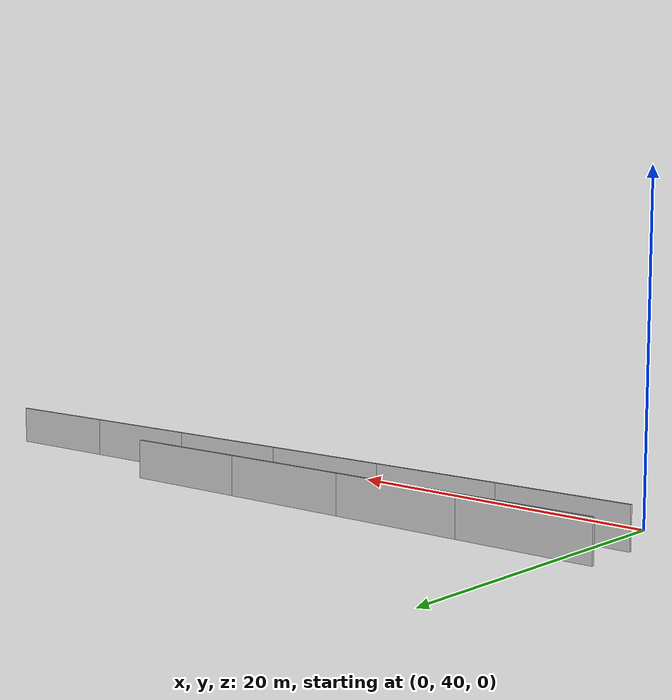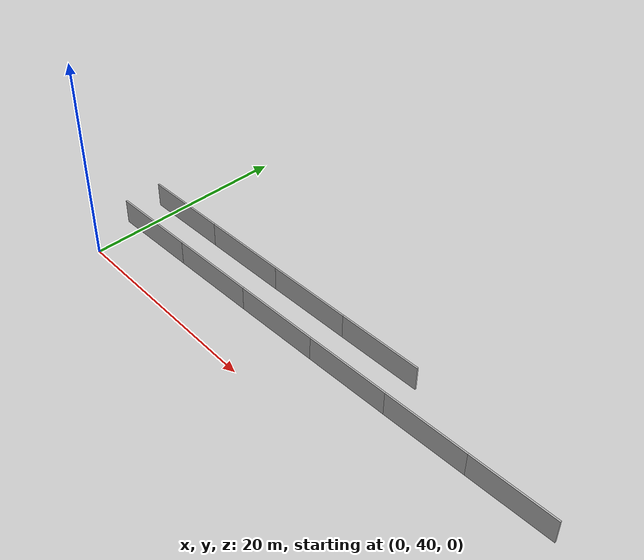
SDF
<?xml version="1.0" ?>
<sdf version="1.6">
  <model name="sps_4701">
    <pose frame="">0 0 0 0 -0 0</pose>
    <static>1</static>
    <self_collide>0</self_collide>
    <allow_auto_disable>0</allow_auto_disable>
    <link name="Wall8944">
      <kinematic>0</kinematic>
      <gravity>1</gravity>
      <self_collide>0</self_collide>
      <collision name="collision">
        <geometry>
          <box>
            <size>8.25148 0.15 2.5</size>
          </box>
        </geometry>
        <pose frame="">0 0 0 0 -0 0</pose>
      </collision>
      <visual name="visual">
        <geometry>
          <box>
            <size>8.25148 0.15 2.5</size>
          </box>
        </geometry>
        <pose frame="">0 0 0 0 -0 0</pose>
        <cast_shadows>1</cast_shadows>
        <transparency>0.0</transparency>
      </visual>
      <pose frame="">2.21145 48.5394 1.25 0 -0 0.0414788</pose>
    </link>
    <link name="Wall8945">
      <kinematic>0</kinematic>
      <gravity>1</gravity>
      <self_collide>0</self_collide>
      <collision name="collision">
        <geometry>
          <box>
            <size>8.25195 0.15 2.5</size>
          </box>
        </geometry>
        <pose frame="">0 0 0 0 -0 0</pose>
      </collision>
      <visual name="visual">
        <geometry>
          <box>
            <size>8.25195 0.15 2.5</size>
          </box>
        </geometry>
        <pose frame="">0 0 0 0 -0 0</pose>
        <cast_shadows>1</cast_shadows>
        <transparency>0.0</transparency>
      </visual>
      <pose frame="">10.4556 48.8913 1.25 0 -0 0.043838</pose>
    </link>
    <link name="Wall8946">
      <kinematic>0</kinematic>
      <gravity>1</gravity>
      <self_collide>0</self_collide>
      <collision name="collision">
        <geometry>
          <box>
            <size>8.25178 0.15 2.5</size>
          </box>
        </geometry>
        <pose frame="">0 0 0 0 -0 0</pose>
      </collision>
      <visual name="visual">
        <geometry>
          <box>
            <size>8.25178 0.15 2.5</size>
          </box>
        </geometry>
        <pose frame="">0 0 0 0 -0 0</pose>
        <cast_shadows>1</cast_shadows>
        <transparency>0.0</transparency>
      </visual>
      <pose frame="">18.6991 49.2626 1.25 0 -0 0.046186</pose>
    </link>
    <link name="Wall8947">
      <kinematic>0</kinematic>
      <gravity>1</gravity>
      <self_collide>0</self_collide>
      <collision name="collision">
        <geometry>
          <box>
            <size>8.25155 0.15 2.5</size>
          </box>
        </geometry>
        <pose frame="">0 0 0 0 -0 0</pose>
      </collision>
      <visual name="visual">
        <geometry>
          <box>
            <size>8.25155 0.15 2.5</size>
          </box>
        </geometry>
        <pose frame="">0 0 0 0 -0 0</pose>
        <cast_shadows>1</cast_shadows>
        <transparency>0.0</transparency>
      </visual>
      <pose frame="">26.9416 49.6534 1.25 0 -0 0.0485717</pose>
    </link>
    <link name="Wall9035">
      <kinematic>0</kinematic>
      <gravity>1</gravity>
      <self_collide>0</self_collide>
      <collision name="collision">
        <geometry>
          <box>
            <size>8.26149 0.15 2.5</size>
          </box>
        </geometry>
        <pose frame="">0 0 0 0 -0 0</pose>
      </collision>
      <visual name="visual">
        <geometry>
          <box>
            <size>8.26149 0.15 2.5</size>
          </box>
        </geometry>
        <pose frame="">0 0 0 0 -0 0</pose>
        <cast_shadows>1</cast_shadows>
        <transparency>0.0</transparency>
      </visual>
      <pose frame="">2.30544 44.7835 1.25 0 -0 0.0414507</pose>
    </link>
    <link name="Wall9036">
      <kinematic>0</kinematic>
      <gravity>1</gravity>
      <self_collide>0</self_collide>
      <collision name="collision">
        <geometry>
          <box>
            <size>8.26195 0.15 2.5</size>
          </box>
        </geometry>
        <pose frame="">0 0 0 0 -0 0</pose>
      </collision>
      <visual name="visual">
        <geometry>
          <box>
            <size>8.26195 0.15 2.5</size>
          </box>
        </geometry>
        <pose frame="">0 0 0 0 -0 0</pose>
        <cast_shadows>1</cast_shadows>
        <transparency>0.0</transparency>
      </visual>
      <pose frame="">10.5597 45.1356 1.25 0 -0 0.0438071</pose>
    </link>
    <link name="Wall9037">
      <kinematic>0</kinematic>
      <gravity>1</gravity>
      <self_collide>0</self_collide>
      <collision name="collision">
        <geometry>
          <box>
            <size>8.2618 0.15 2.5</size>
          </box>
        </geometry>
        <pose frame="">0 0 0 0 -0 0</pose>
      </collision>
      <visual name="visual">
        <geometry>
          <box>
            <size>8.2618 0.15 2.5</size>
          </box>
        </geometry>
        <pose frame="">0 0 0 0 -0 0</pose>
        <cast_shadows>1</cast_shadows>
        <transparency>0.0</transparency>
      </visual>
      <pose frame="">18.8132 45.5072 1.25 0 -0 0.0461817</pose>
    </link>
    <link name="Wall9038">
      <kinematic>0</kinematic>
      <gravity>1</gravity>
      <self_collide>0</self_collide>
      <collision name="collision">
        <geometry>
          <box>
            <size>8.26151 0.15 2.5</size>
          </box>
        </geometry>
        <pose frame="">0 0 0 0 -0 0</pose>
      </collision>
      <visual name="visual">
        <geometry>
          <box>
            <size>8.26151 0.15 2.5</size>
          </box>
        </geometry>
        <pose frame="">0 0 0 0 -0 0</pose>
        <cast_shadows>1</cast_shadows>
        <transparency>0.0</transparency>
      </visual>
      <pose frame="">27.0655 45.8984 1.25 0 -0 0.0485576</pose>
    </link>
    <link name="Wall9039">
      <kinematic>0</kinematic>
      <gravity>1</gravity>
      <self_collide>0</self_collide>
      <collision name="collision">
        <geometry>
          <box>
            <size>8.26174 0.15 2.5</size>
          </box>
        </geometry>
        <pose frame="">0 0 0 0 -0 0</pose>
      </collision>
      <visual name="visual">
        <geometry>
          <box>
            <size>8.26174 0.15 2.5</size>
          </box>
        </geometry>
        <pose frame="">0 0 0 0 -0 0</pose>
        <cast_shadows>1</cast_shadows>
        <transparency>0.0</transparency>
      </visual>
      <pose frame="">35.3169 46.3091 1.25 0 -0 0.0509084</pose>
    </link>
    <link name="Wall9040">
      <kinematic>0</kinematic>
      <gravity>1</gravity>
      <self_collide>0</self_collide>
      <collision name="collision">
        <geometry>
          <box>
            <size>8.26191 0.15 2.5</size>
          </box>
        </geometry>
        <pose frame="">0 0 0 0 -0 0</pose>
      </collision>
      <visual name="visual">
        <geometry>
          <box>
            <size>8.26191 0.15 2.5</size>
          </box>
        </geometry>
        <pose frame="">0 0 0 0 -0 0</pose>
        <cast_shadows>1</cast_shadows>
        <transparency>0.0</transparency>
      </visual>
      <pose frame="">43.5676 46.7393 1.25 0 -0 0.053282</pose>
    </link>
  </model>
</sdf>
